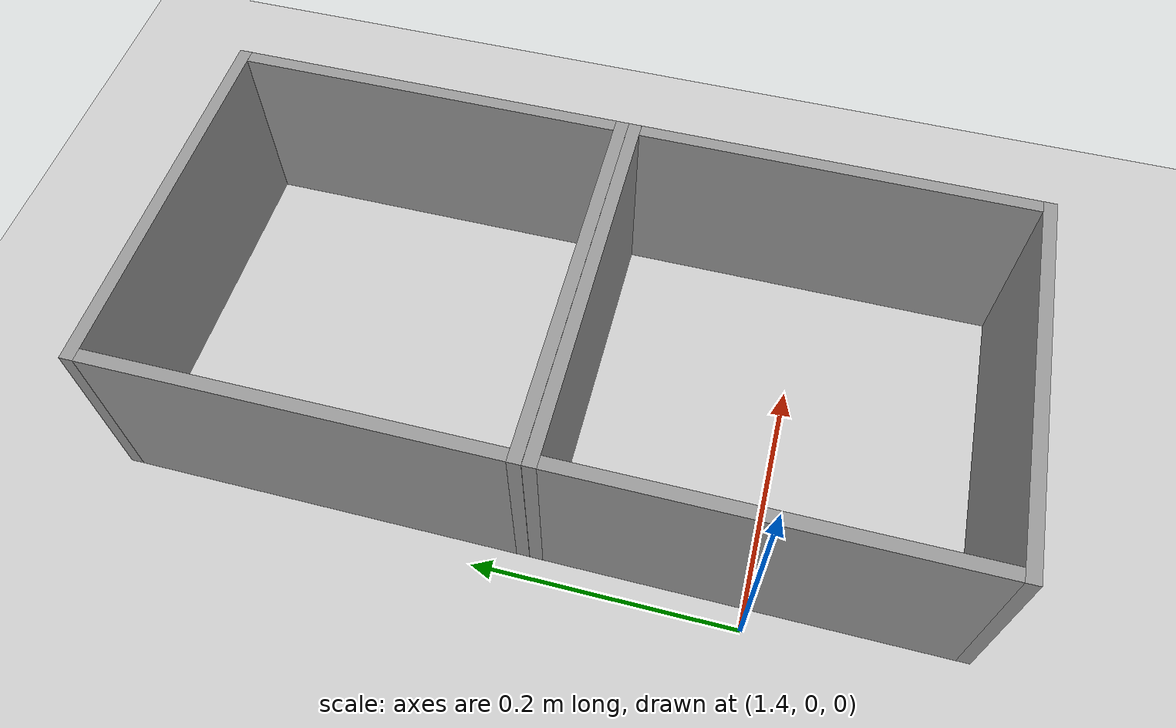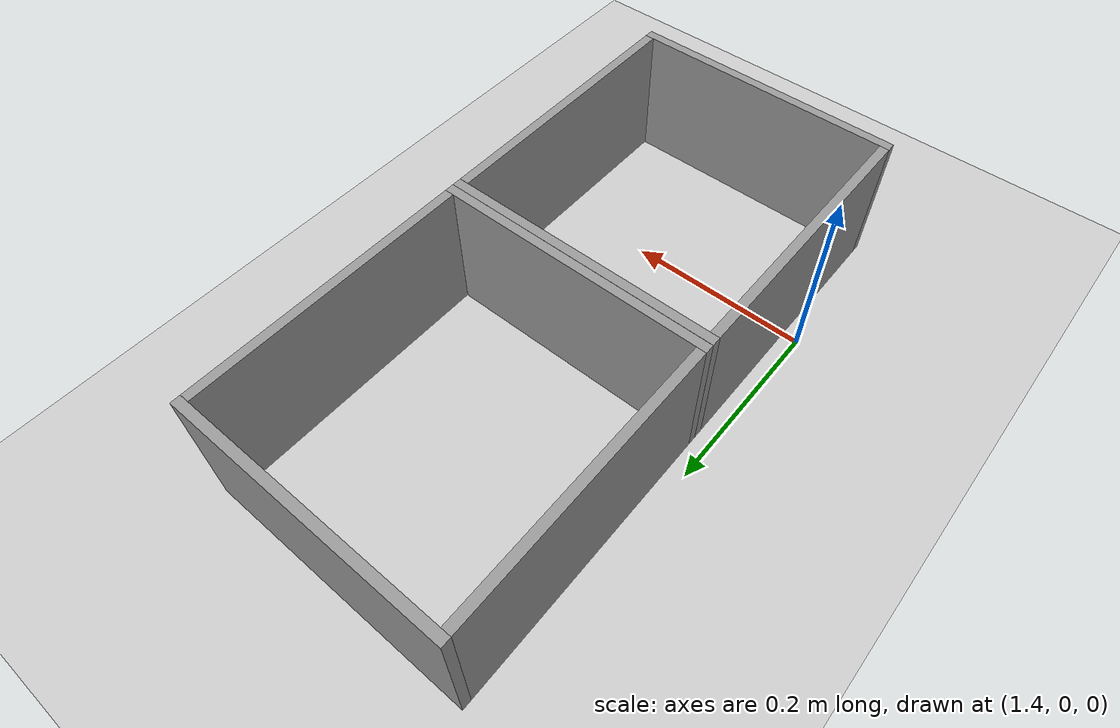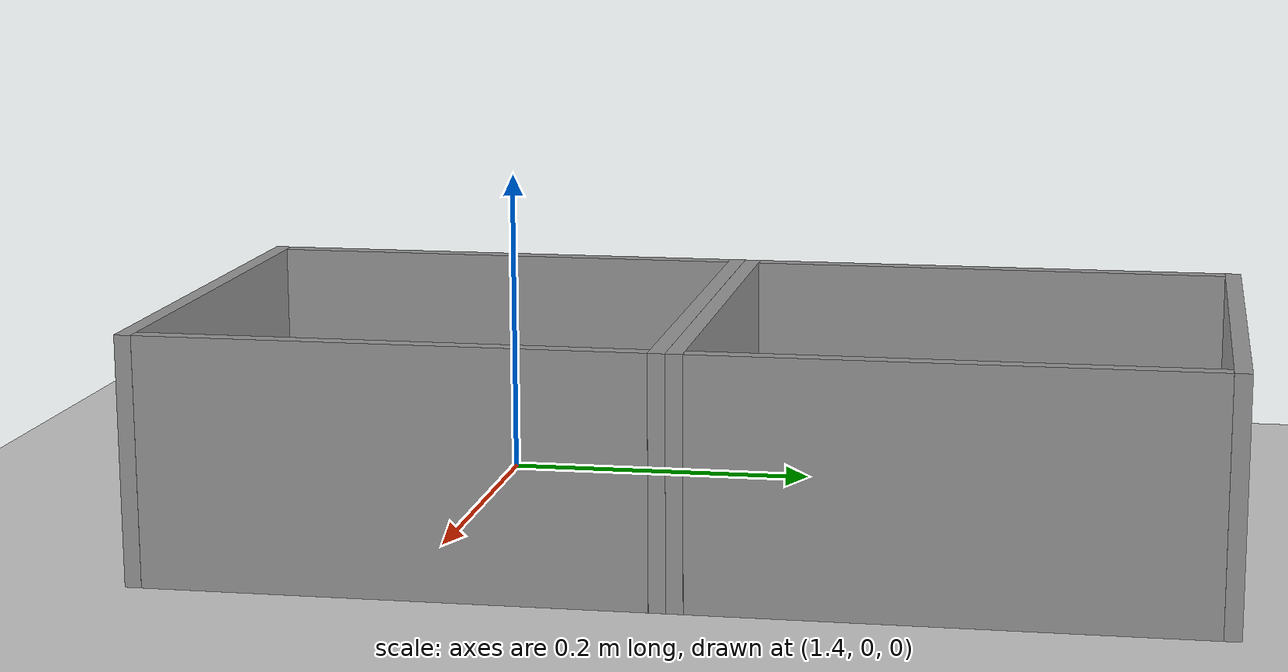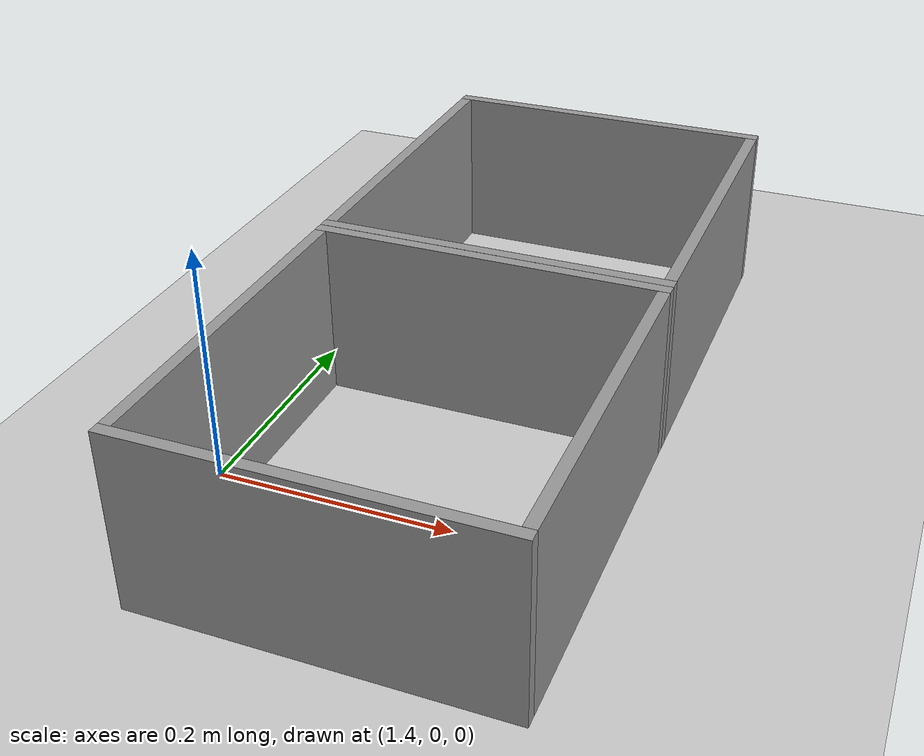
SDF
<sdf version="1.6">
 <world name="default">
  <model name="ground_plane">
   <static>1</static>
   <link name="link">
    <collision name="collision">
     <geometry><plane><normal>0 0 1</normal><size>100 100</size></plane></geometry>
     <surface><friction><ode><mu>100</mu><mu2>50</mu2></ode></friction></surface>
    </collision>
    <visual name="visual">
     <cast_shadows>0</cast_shadows>
     <geometry><plane><normal>0 0 1</normal><size>100 100</size></plane></geometry>
     <material>
      <script><uri>file://media/materials/scripts/gazebo.material</uri><name>Gazebo/Grey</name></script>
     </material>
    </visual>
   </link>
  </model>
  <model name="lego_box">
   <link name="link_0">
    <pose>0 -0.145 0 0 -0 0</pose>
    <inertial>
     <mass>1</mass>
     <inertia>
      <ixx>0.166667</ixx>
      <ixy>0</ixy>
      <ixz>0</ixz>
      <iyy>0.166667</iyy>
      <iyz>0</iyz>
      <izz>0.166667</izz>
     </inertia>
    </inertial>
    <visual name="visual">
     <geometry><box><size>0.3 0.01 0.15</size></box></geometry>
     <material>
      <lighting>1</lighting>
      <script><uri>file://media/materials/scripts/gazebo.material</uri><name>Gazebo/Grey</name></script>
      <ambient>0.3 0.3 0.3 1</ambient>
      <diffuse>0.7 0.7 0.7 1</diffuse>
      <specular>0.01 0.01 0.01 1</specular>
      <emissive>0 0 0 1</emissive>
      <shader type="vertex"><normal_map>__default__</normal_map></shader>
     </material>
    </visual>
    <collision name="collision">
     <geometry><box><size>0.3 0.01 0.15</size></box></geometry>
     <surface>
      <friction>
       <ode><mu>1</mu><mu2>1</mu2><fdir1>0 0 0</fdir1><slip1>0</slip1><slip2>0</slip2></ode>
       <torsional>
        <coefficient>1</coefficient>
        <patch_radius>0</patch_radius>
        <surface_radius>0</surface_radius>
        <use_patch_radius>1</use_patch_radius>
        <ode><slip>0</slip></ode>
       </torsional>
      </friction>
      <bounce><restitution_coefficient>0</restitution_coefficient><threshold>1e+06</threshold></bounce>
      <contact>
       <collide_without_contact>0</collide_without_contact>
       <collide_without_contact_bitmask>1</collide_without_contact_bitmask>
       <collide_bitmask>1</collide_bitmask>
       <ode>
        <soft_cfm>0</soft_cfm>
        <soft_erp>0.2</soft_erp>
        <kp>1e+13</kp>
        <kd>1</kd>
        <max_vel>0.01</max_vel>
        <min_depth>0</min_depth>
       </ode>
       <bullet>
        <split_impulse>1</split_impulse>
        <split_impulse_penetration_threshold>-0.01</split_impulse_penetration_threshold>
        <soft_cfm>0</soft_cfm>
        <soft_erp>0.2</soft_erp>
        <kp>1e+13</kp>
        <kd>1</kd>
       </bullet>
      </contact>
     </surface>
    </collision>
   </link>
   <link name="link_0_clone">
    <pose>0 0.145 0 0 -0 0</pose>
    <inertial>
     <mass>1</mass>
     <inertia>
      <ixx>0.166667</ixx>
      <ixy>0</ixy>
      <ixz>0</ixz>
      <iyy>0.166667</iyy>
      <iyz>0</iyz>
      <izz>0.166667</izz>
     </inertia>
    </inertial>
    <visual name="visual">
     <geometry><box><size>0.3 0.01 0.15</size></box></geometry>
     <material>
      <lighting>1</lighting>
      <script><uri>file://media/materials/scripts/gazebo.material</uri><name>Gazebo/Grey</name></script>
      <ambient>0.3 0.3 0.3 1</ambient>
      <diffuse>0.7 0.7 0.7 1</diffuse>
      <specular>0.01 0.01 0.01 1</specular>
      <emissive>0 0 0 1</emissive>
      <shader type="vertex"><normal_map>__default__</normal_map></shader>
     </material>
    </visual>
    <collision name="collision">
     <geometry><box><size>0.3 0.01 0.15</size></box></geometry>
     <surface>
      <friction>
       <ode><mu>1</mu><mu2>1</mu2><fdir1>0 0 0</fdir1><slip1>0</slip1><slip2>0</slip2></ode>
       <torsional>
        <coefficient>1</coefficient>
        <patch_radius>0</patch_radius>
        <surface_radius>0</surface_radius>
        <use_patch_radius>1</use_patch_radius>
        <ode><slip>0</slip></ode>
       </torsional>
      </friction>
      <bounce><restitution_coefficient>0</restitution_coefficient><threshold>1e+06</threshold></bounce>
      <contact>
       <collide_without_contact>0</collide_without_contact>
       <collide_without_contact_bitmask>1</collide_without_contact_bitmask>
       <collide_bitmask>1</collide_bitmask>
       <ode>
        <soft_cfm>0</soft_cfm>
        <soft_erp>0.2</soft_erp>
        <kp>1e+13</kp>
        <kd>1</kd>
        <max_vel>0.01</max_vel>
        <min_depth>0</min_depth>
       </ode>
       <bullet>
        <split_impulse>1</split_impulse>
        <split_impulse_penetration_threshold>-0.01</split_impulse_penetration_threshold>
        <soft_cfm>0</soft_cfm>
        <soft_erp>0.2</soft_erp>
        <kp>1e+13</kp>
        <kd>1</kd>
       </bullet>
      </contact>
     </surface>
    </collision>
   </link>
   <link name="link_0_clone_1">
    <pose>-0.155 -0 0 0 -0 1.571</pose>
    <inertial>
     <mass>1</mass>
     <inertia>
      <ixx>0.166667</ixx>
      <ixy>0</ixy>
      <ixz>0</ixz>
      <iyy>0.166667</iyy>
      <iyz>0</iyz>
      <izz>0.166667</izz>
     </inertia>
    </inertial>
    <visual name="visual">
     <geometry><box><size>0.3 0.01 0.15</size></box></geometry>
     <material>
      <lighting>1</lighting>
      <script><uri>file://media/materials/scripts/gazebo.material</uri><name>Gazebo/Grey</name></script>
      <ambient>0.3 0.3 0.3 1</ambient>
      <diffuse>0.7 0.7 0.7 1</diffuse>
      <specular>0.01 0.01 0.01 1</specular>
      <emissive>0 0 0 1</emissive>
      <shader type="vertex"><normal_map>__default__</normal_map></shader>
     </material>
    </visual>
    <collision name="collision">
     <geometry><box><size>0.3 0.01 0.15</size></box></geometry>
     <surface>
      <friction>
       <ode><mu>1</mu><mu2>1</mu2><fdir1>0 0 0</fdir1><slip1>0</slip1><slip2>0</slip2></ode>
       <torsional>
        <coefficient>1</coefficient>
        <patch_radius>0</patch_radius>
        <surface_radius>0</surface_radius>
        <use_patch_radius>1</use_patch_radius>
        <ode><slip>0</slip></ode>
       </torsional>
      </friction>
      <bounce><restitution_coefficient>0</restitution_coefficient><threshold>1e+06</threshold></bounce>
      <contact>
       <collide_without_contact>0</collide_without_contact>
       <collide_without_contact_bitmask>1</collide_without_contact_bitmask>
       <collide_bitmask>1</collide_bitmask>
       <ode>
        <soft_cfm>0</soft_cfm>
        <soft_erp>0.2</soft_erp>
        <kp>1e+13</kp>
        <kd>1</kd>
        <max_vel>0.01</max_vel>
        <min_depth>0</min_depth>
       </ode>
       <bullet>
        <split_impulse>1</split_impulse>
        <split_impulse_penetration_threshold>-0.01</split_impulse_penetration_threshold>
        <soft_cfm>0</soft_cfm>
        <soft_erp>0.2</soft_erp>
        <kp>1e+13</kp>
        <kd>1</kd>
       </bullet>
      </contact>
     </surface>
    </collision>
   </link>
   <link name="link_0_clone_2">
    <pose>0.155 -0 0 0 0 -1.571</pose>
    <inertial>
     <mass>1</mass>
     <inertia>
      <ixx>0.166667</ixx>
      <ixy>0</ixy>
      <ixz>0</ixz>
      <iyy>0.166667</iyy>
      <iyz>0</iyz>
      <izz>0.166667</izz>
     </inertia>
    </inertial>
    <visual name="visual">
     <geometry><box><size>0.3 0.01 0.15</size></box></geometry>
     <material>
      <lighting>1</lighting>
      <script><uri>file://media/materials/scripts/gazebo.material</uri><name>Gazebo/Grey</name></script>
      <ambient>0.3 0.3 0.3 1</ambient>
      <diffuse>0.7 0.7 0.7 1</diffuse>
      <specular>0.01 0.01 0.01 1</specular>
      <emissive>0 0 0 1</emissive>
      <shader type="vertex"><normal_map>__default__</normal_map></shader>
     </material>
    </visual>
    <collision name="collision">
     <geometry><box><size>0.3 0.01 0.15</size></box></geometry>
     <surface>
      <friction>
       <ode><mu>1</mu><mu2>1</mu2><fdir1>0 0 0</fdir1><slip1>0</slip1><slip2>0</slip2></ode>
       <torsional>
        <coefficient>1</coefficient>
        <patch_radius>0</patch_radius>
        <surface_radius>0</surface_radius>
        <use_patch_radius>1</use_patch_radius>
        <ode><slip>0</slip></ode>
       </torsional>
      </friction>
      <bounce><restitution_coefficient>0</restitution_coefficient><threshold>1e+06</threshold></bounce>
      <contact>
       <collide_without_contact>0</collide_without_contact>
       <collide_without_contact_bitmask>1</collide_without_contact_bitmask>
       <collide_bitmask>1</collide_bitmask>
       <ode>
        <soft_cfm>0</soft_cfm>
        <soft_erp>0.2</soft_erp>
        <kp>1e+13</kp>
        <kd>1</kd>
        <max_vel>0.01</max_vel>
        <min_depth>0</min_depth>
       </ode>
       <bullet>
        <split_impulse>1</split_impulse>
        <split_impulse_penetration_threshold>-0.01</split_impulse_penetration_threshold>
        <soft_cfm>0</soft_cfm>
        <soft_erp>0.2</soft_erp>
        <kp>1e+13</kp>
        <kd>1</kd>
       </bullet>
      </contact>
     </surface>
    </collision>
   </link>
   <joint name="link_0_JOINT_0" type="fixed">
    <parent>link_0</parent>
    <child>link_0_clone_1</child>
    <physics>
     <ode><limit><cfm>0</cfm><erp>0.2</erp></limit><suspension><cfm>0</cfm><erp>0.2</erp></suspension></ode>
    </physics>
   </joint>
   <joint name="link_0_JOINT_1" type="fixed">
    <parent>link_0</parent>
    <child>link_0_clone_2</child>
    <physics>
     <ode><limit><cfm>0</cfm><erp>0.2</erp></limit><suspension><cfm>0</cfm><erp>0.2</erp></suspension></ode>
    </physics>
   </joint>
   <joint name="link_0_JOINT_2" type="fixed">
    <parent>link_0</parent>
    <child>link_0_clone</child>
    <physics>
     <ode><limit><cfm>0</cfm><erp>0.2</erp></limit><suspension><cfm>0</cfm><erp>0.2</erp></suspension></ode>
    </physics>
   </joint>
   <static>0</static>
   <pose>1.56684 0.32005 0.075 0 0 -1.57082</pose>
  </model>
  <model name="lego_box_clone">
   <link name="link_0">
    <pose>0 -0.145 0 0 -0 0</pose>
    <inertial>
     <mass>1</mass>
     <inertia>
      <ixx>0.166667</ixx>
      <ixy>0</ixy>
      <ixz>0</ixz>
      <iyy>0.166667</iyy>
      <iyz>0</iyz>
      <izz>0.166667</izz>
     </inertia>
    </inertial>
    <visual name="visual">
     <geometry><box><size>0.3 0.01 0.15</size></box></geometry>
     <material>
      <lighting>1</lighting>
      <script><uri>file://media/materials/scripts/gazebo.material</uri><name>Gazebo/Grey</name></script>
      <ambient>0.3 0.3 0.3 1</ambient>
      <diffuse>0.7 0.7 0.7 1</diffuse>
      <specular>0.01 0.01 0.01 1</specular>
      <emissive>0 0 0 1</emissive>
      <shader type="vertex"><normal_map>__default__</normal_map></shader>
     </material>
    </visual>
    <collision name="collision">
     <geometry><box><size>0.3 0.01 0.15</size></box></geometry>
     <surface>
      <friction>
       <ode><mu>1</mu><mu2>1</mu2><fdir1>0 0 0</fdir1><slip1>0</slip1><slip2>0</slip2></ode>
       <torsional>
        <coefficient>1</coefficient>
        <patch_radius>0</patch_radius>
        <surface_radius>0</surface_radius>
        <use_patch_radius>1</use_patch_radius>
        <ode><slip>0</slip></ode>
       </torsional>
      </friction>
      <bounce><restitution_coefficient>0</restitution_coefficient><threshold>1e+06</threshold></bounce>
      <contact>
       <collide_without_contact>0</collide_without_contact>
       <collide_without_contact_bitmask>1</collide_without_contact_bitmask>
       <collide_bitmask>1</collide_bitmask>
       <ode>
        <soft_cfm>0</soft_cfm>
        <soft_erp>0.2</soft_erp>
        <kp>1e+13</kp>
        <kd>1</kd>
        <max_vel>0.01</max_vel>
        <min_depth>0</min_depth>
       </ode>
       <bullet>
        <split_impulse>1</split_impulse>
        <split_impulse_penetration_threshold>-0.01</split_impulse_penetration_threshold>
        <soft_cfm>0</soft_cfm>
        <soft_erp>0.2</soft_erp>
        <kp>1e+13</kp>
        <kd>1</kd>
       </bullet>
      </contact>
     </surface>
    </collision>
   </link>
   <link name="link_0_clone">
    <pose>0 0.145 0 0 -0 0</pose>
    <inertial>
     <mass>1</mass>
     <inertia>
      <ixx>0.166667</ixx>
      <ixy>0</ixy>
      <ixz>0</ixz>
      <iyy>0.166667</iyy>
      <iyz>0</iyz>
      <izz>0.166667</izz>
     </inertia>
    </inertial>
    <visual name="visual">
     <geometry><box><size>0.3 0.01 0.15</size></box></geometry>
     <material>
      <lighting>1</lighting>
      <script><uri>file://media/materials/scripts/gazebo.material</uri><name>Gazebo/Grey</name></script>
      <ambient>0.3 0.3 0.3 1</ambient>
      <diffuse>0.7 0.7 0.7 1</diffuse>
      <specular>0.01 0.01 0.01 1</specular>
      <emissive>0 0 0 1</emissive>
      <shader type="vertex"><normal_map>__default__</normal_map></shader>
     </material>
    </visual>
    <collision name="collision">
     <geometry><box><size>0.3 0.01 0.15</size></box></geometry>
     <surface>
      <friction>
       <ode><mu>1</mu><mu2>1</mu2><fdir1>0 0 0</fdir1><slip1>0</slip1><slip2>0</slip2></ode>
       <torsional>
        <coefficient>1</coefficient>
        <patch_radius>0</patch_radius>
        <surface_radius>0</surface_radius>
        <use_patch_radius>1</use_patch_radius>
        <ode><slip>0</slip></ode>
       </torsional>
      </friction>
      <bounce><restitution_coefficient>0</restitution_coefficient><threshold>1e+06</threshold></bounce>
      <contact>
       <collide_without_contact>0</collide_without_contact>
       <collide_without_contact_bitmask>1</collide_without_contact_bitmask>
       <collide_bitmask>1</collide_bitmask>
       <ode>
        <soft_cfm>0</soft_cfm>
        <soft_erp>0.2</soft_erp>
        <kp>1e+13</kp>
        <kd>1</kd>
        <max_vel>0.01</max_vel>
        <min_depth>0</min_depth>
       </ode>
       <bullet>
        <split_impulse>1</split_impulse>
        <split_impulse_penetration_threshold>-0.01</split_impulse_penetration_threshold>
        <soft_cfm>0</soft_cfm>
        <soft_erp>0.2</soft_erp>
        <kp>1e+13</kp>
        <kd>1</kd>
       </bullet>
      </contact>
     </surface>
    </collision>
   </link>
   <link name="link_0_clone_1">
    <pose>-0.155 -0 0 0 -0 1.571</pose>
    <inertial>
     <mass>1</mass>
     <inertia>
      <ixx>0.166667</ixx>
      <ixy>0</ixy>
      <ixz>0</ixz>
      <iyy>0.166667</iyy>
      <iyz>0</iyz>
      <izz>0.166667</izz>
     </inertia>
    </inertial>
    <visual name="visual">
     <geometry><box><size>0.3 0.01 0.15</size></box></geometry>
     <material>
      <lighting>1</lighting>
      <script><uri>file://media/materials/scripts/gazebo.material</uri><name>Gazebo/Grey</name></script>
      <ambient>0.3 0.3 0.3 1</ambient>
      <diffuse>0.7 0.7 0.7 1</diffuse>
      <specular>0.01 0.01 0.01 1</specular>
      <emissive>0 0 0 1</emissive>
      <shader type="vertex"><normal_map>__default__</normal_map></shader>
     </material>
    </visual>
    <collision name="collision">
     <geometry><box><size>0.3 0.01 0.15</size></box></geometry>
     <surface>
      <friction>
       <ode><mu>1</mu><mu2>1</mu2><fdir1>0 0 0</fdir1><slip1>0</slip1><slip2>0</slip2></ode>
       <torsional>
        <coefficient>1</coefficient>
        <patch_radius>0</patch_radius>
        <surface_radius>0</surface_radius>
        <use_patch_radius>1</use_patch_radius>
        <ode><slip>0</slip></ode>
       </torsional>
      </friction>
      <bounce><restitution_coefficient>0</restitution_coefficient><threshold>1e+06</threshold></bounce>
      <contact>
       <collide_without_contact>0</collide_without_contact>
       <collide_without_contact_bitmask>1</collide_without_contact_bitmask>
       <collide_bitmask>1</collide_bitmask>
       <ode>
        <soft_cfm>0</soft_cfm>
        <soft_erp>0.2</soft_erp>
        <kp>1e+13</kp>
        <kd>1</kd>
        <max_vel>0.01</max_vel>
        <min_depth>0</min_depth>
       </ode>
       <bullet>
        <split_impulse>1</split_impulse>
        <split_impulse_penetration_threshold>-0.01</split_impulse_penetration_threshold>
        <soft_cfm>0</soft_cfm>
        <soft_erp>0.2</soft_erp>
        <kp>1e+13</kp>
        <kd>1</kd>
       </bullet>
      </contact>
     </surface>
    </collision>
   </link>
   <link name="link_0_clone_2">
    <pose>0.155 -0 0 0 0 -1.571</pose>
    <inertial>
     <mass>1</mass>
     <inertia>
      <ixx>0.166667</ixx>
      <ixy>0</ixy>
      <ixz>0</ixz>
      <iyy>0.166667</iyy>
      <iyz>0</iyz>
      <izz>0.166667</izz>
     </inertia>
    </inertial>
    <visual name="visual">
     <geometry><box><size>0.3 0.01 0.15</size></box></geometry>
     <material>
      <lighting>1</lighting>
      <script><uri>file://media/materials/scripts/gazebo.material</uri><name>Gazebo/Grey</name></script>
      <ambient>0.3 0.3 0.3 1</ambient>
      <diffuse>0.7 0.7 0.7 1</diffuse>
      <specular>0.01 0.01 0.01 1</specular>
      <emissive>0 0 0 1</emissive>
      <shader type="vertex"><normal_map>__default__</normal_map></shader>
     </material>
    </visual>
    <collision name="collision">
     <geometry><box><size>0.3 0.01 0.15</size></box></geometry>
     <surface>
      <friction>
       <ode><mu>1</mu><mu2>1</mu2><fdir1>0 0 0</fdir1><slip1>0</slip1><slip2>0</slip2></ode>
       <torsional>
        <coefficient>1</coefficient>
        <patch_radius>0</patch_radius>
        <surface_radius>0</surface_radius>
        <use_patch_radius>1</use_patch_radius>
        <ode><slip>0</slip></ode>
       </torsional>
      </friction>
      <bounce><restitution_coefficient>0</restitution_coefficient><threshold>1e+06</threshold></bounce>
      <contact>
       <collide_without_contact>0</collide_without_contact>
       <collide_without_contact_bitmask>1</collide_without_contact_bitmask>
       <collide_bitmask>1</collide_bitmask>
       <ode>
        <soft_cfm>0</soft_cfm>
        <soft_erp>0.2</soft_erp>
        <kp>1e+13</kp>
        <kd>1</kd>
        <max_vel>0.01</max_vel>
        <min_depth>0</min_depth>
       </ode>
       <bullet>
        <split_impulse>1</split_impulse>
        <split_impulse_penetration_threshold>-0.01</split_impulse_penetration_threshold>
        <soft_cfm>0</soft_cfm>
        <soft_erp>0.2</soft_erp>
        <kp>1e+13</kp>
        <kd>1</kd>
       </bullet>
      </contact>
     </surface>
    </collision>
   </link>
   <joint name="link_0_JOINT_0" type="fixed">
    <parent>link_0</parent>
    <child>link_0_clone_1</child>
    <physics>
     <ode><limit><cfm>0</cfm><erp>0.2</erp></limit><suspension><cfm>0</cfm><erp>0.2</erp></suspension></ode>
    </physics>
   </joint>
   <joint name="link_0_JOINT_1" type="fixed">
    <parent>link_0</parent>
    <child>link_0_clone_2</child>
    <physics>
     <ode><limit><cfm>0</cfm><erp>0.2</erp></limit><suspension><cfm>0</cfm><erp>0.2</erp></suspension></ode>
    </physics>
   </joint>
   <joint name="link_0_JOINT_2" type="fixed">
    <parent>link_0</parent>
    <child>link_0_clone</child>
    <physics>
     <ode><limit><cfm>0</cfm><erp>0.2</erp></limit><suspension><cfm>0</cfm><erp>0.2</erp></suspension></ode>
    </physics>
   </joint>
   <static>0</static>
   <pose>1.56684 -9e-06 0.074998 -6e-06 -7e-06 -1.57083</pose>
  </model>
 </world>
</sdf>
